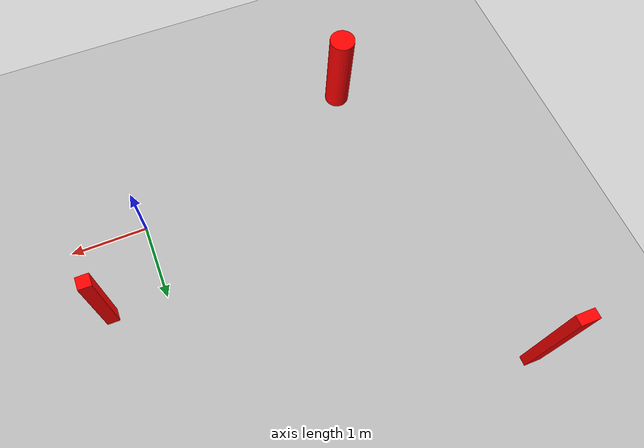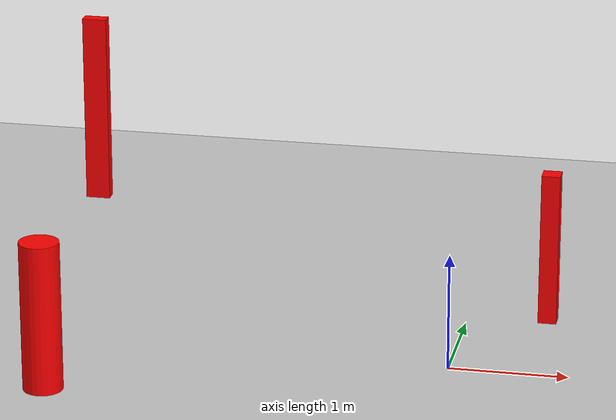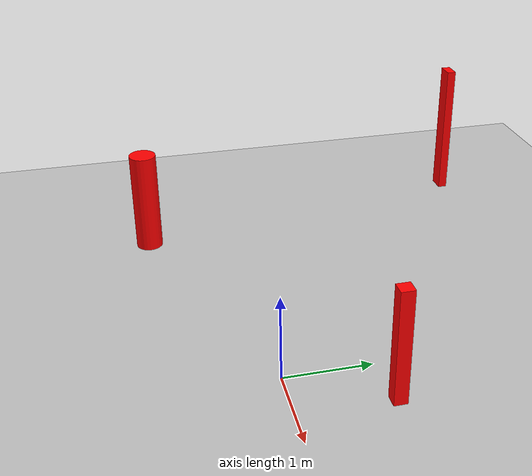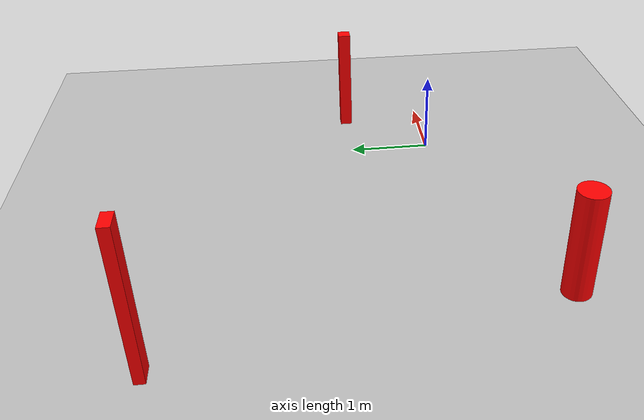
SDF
<sdf version='1.7'>
            <world name='default'>
                <light name='sun' type='directional'>
                <cast_shadows>1</cast_shadows>
                <pose>0 0 10 0 -0 0</pose>
                <diffuse>0.8 0.8 0.8 1</diffuse>
                <specular>0.2 0.2 0.2 1</specular>
                <attenuation>
                    <range>1000</range>
                    <constant>0.9</constant>
                    <linear>0.01</linear>
                    <quadratic>0.001</quadratic>
                </attenuation>
                <direction>-0.5 0.1 -0.9</direction>
                <spot>
                    <inner_angle>0</inner_angle>
                    <outer_angle>0</outer_angle>
                    <falloff>0</falloff>
                </spot>
                </light>

                            <model name='dynamic_cylinder_17_0.3_0.3_1.3'>
                            <static>true</static>
                            <pose>-3.169738067111009 -1.0435226096962715 0.6373566915163664 0 0 0</pose> <!-- X, Y, Z, Roll, Pitch, Yaw -->
                            <link name='link'>
                                <visual name='visual'>
                                    <geometry>
                                        <cylinder>
                                            <radius>0.16591764718500285</radius>
                                            <length>1.2747133830327328</length>
                                        </cylinder>
                                    </geometry>
                                    <material>
                                        <ambient>1 0 0 1</ambient> <!-- Red color -->
                                        <diffuse>1 0 0 1</diffuse> <!-- Red color -->
                                        <specular>0.5 0.5 0.5 1</specular> <!-- Specular highlight -->
                                    </material>
                                </visual>
                            </link>
                            <plugin name="obstacle_motion" filename="libobstaclePathPlugin.so">
                                <orientation>false</orientation>
                                <loop>0</loop>
                                <velocity>0.41820538017409825</velocity>
                                <path>
                                <waypoint>-3.169738067111009 -1.0435226096962715 0.6373566915163664</waypoint>
                                <waypoint>11.291848646303464 -8.797453638105504 0.6373566915163664</waypoint>
                                </path>
                            </plugin>
                            </model>

                            <model name='dynamic_box_25_0.2_0.1_1.8'>
                            <static>true</static>
                            <pose>-3.8483754275391657 3.311245073776824 0.936758422335512 0 0 0</pose> <!-- X, Y, Z, Roll, Pitch, Yaw -->
                            <link name='link'>
                                <visual name='visual'>
                                    <geometry>
                                        <box>
                                            <size>0.22287350235366285 0.1135711635407551 1.7527602639025108</size> <!-- Width, Depth, Height -->
                                        </box>
                                    </geometry>
                                    <material>
                                        <ambient>1 0 0 1</ambient> <!-- Red color -->
                                        <diffuse>1 0 0 1</diffuse> <!-- Red color -->
                                        <specular>0.5 0.5 0.5 1</specular> <!-- Specular highlight -->
                                    </material>
                                </visual>
                            </link>
                            <plugin name="obstacle_motion" filename="libobstaclePathPlugin.so">
                                <orientation>false</orientation>
                                <loop>0</loop>
                                <velocity>0.4151268145721963</velocity>
                                <path>
                                <waypoint>-3.8483754275391657 3.311245073776824 0.936758422335512</waypoint>
                                <waypoint>-2.7401287261792397 0.7576253338175647 0.9408939853084214</waypoint>
                                </path>
                            </plugin>
                            </model>

                            <model name='dynamic_box_26_0.2_0.2_1.3'>
                            <static>true</static>
                            <pose>0.7001824731037587 1.0273552500675258 0.7339143772698361 0 0 0</pose> <!-- X, Y, Z, Roll, Pitch, Yaw -->
                            <link name='link'>
                                <visual name='visual'>
                                    <geometry>
                                        <box>
                                            <size>0.15670275645860687 0.15261575605931693 1.325017997524895</size> <!-- Width, Depth, Height -->
                                        </box>
                                    </geometry>
                                    <material>
                                        <ambient>1 0 0 1</ambient> <!-- Red color -->
                                        <diffuse>1 0 0 1</diffuse> <!-- Red color -->
                                        <specular>0.5 0.5 0.5 1</specular> <!-- Specular highlight -->
                                    </material>
                                </visual>
                            </link>
                            <plugin name="obstacle_motion" filename="libobstaclePathPlugin.so">
                                <orientation>false</orientation>
                                <loop>0</loop>
                                <velocity>0.49261877804238546</velocity>
                                <path>
                                <waypoint>0.7001824731037587 1.0273552500675258 0.7339143772698361</waypoint>
                                <waypoint>0.39734258638070585 -8.80617623558001 0.7398544659146388</waypoint>
                                </path>
                            </plugin>
                            </model>

    <!-- Ground platform to prevent UAV from falling through -->
    <model name='ground_platform'>
      <static>true</static>
      <pose>0 0 -0.05 0 0 0</pose>
      <link name='link'>
        <collision name='collision'>
          <geometry>
            <box>
              <size>100 100 0.1</size>
            </box>
          </geometry>
          <surface>
            <friction>
              <ode>
                <mu>1.0</mu>
                <mu2>1.0</mu2>
              </ode>
            </friction>
            <contact>
              <ode>
                <kp>1000000.0</kp>
                <kd>100.0</kd>
                <max_vel>0.01</max_vel>
                <min_depth>0.001</min_depth>
              </ode>
            </contact>
          </surface>
        </collision>
        <visual name='visual'>
          <geometry>
            <box>
              <size>100 100 0.1</size>
            </box>
          </geometry>
          <material>
            <ambient>0.3 0.3 0.3 0.5</ambient>
            <diffuse>0.7 0.7 0.7 0.5</diffuse>
          </material>
        </visual>
      </link>
    </model>

            </world>
            </sdf>
